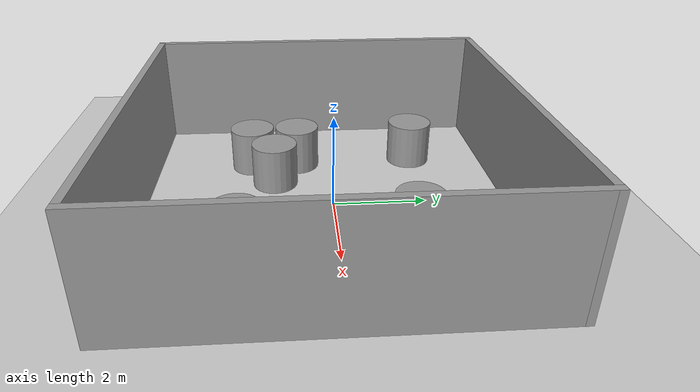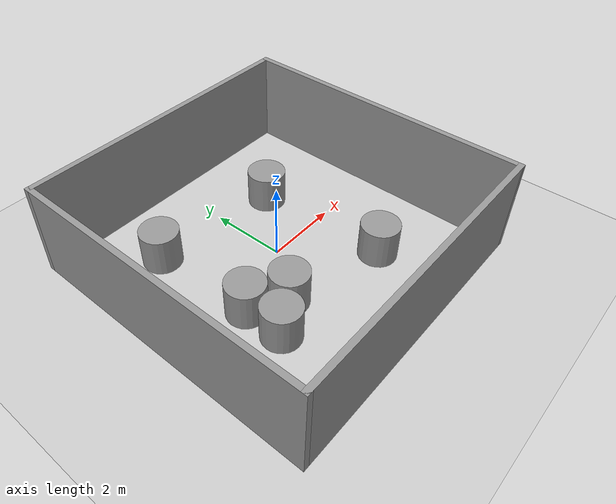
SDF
<sdf version="1.6">
 <world name="default">
  <light name="sun" type="directional">
   <pose>0 0 10 0 -0 0</pose>
   <diffuse>0.8 0.8 0.8 1</diffuse>
   <specular>0.2 0.2 0.2 1</specular>
   <attenuation>
    <range>1000</range>
    <constant>0.9</constant>
    <linear>0.01</linear>
    <quadratic>0.001</quadratic>
   </attenuation>
   <direction>-0.5 0.1 -0.9</direction>
  </light>
  <model name="ground_plane">
   <static>1</static>
   <link name="link">
    <collision name="collision">
     <geometry><plane><normal>0 0 1</normal><size>100 100</size></plane></geometry>
     <surface>
      <contact><collide_bitmask>65535</collide_bitmask></contact>
      <friction><ode><mu>100</mu><mu2>50</mu2></ode></friction>
     </surface>
    </collision>
    <visual name="visual">
     <cast_shadows>0</cast_shadows>
     <geometry><plane><normal>0 0 1</normal><size>100 100</size></plane></geometry>
     <material>
      <script><uri>file://media/materials/scripts/gazebo.material</uri><name>Gazebo/Grey</name></script>
     </material>
    </visual>
   </link>
  </model>
  <gravity>0 0 -9.8</gravity>
  <magnetic_field>6e-06 2.3e-05 -4.2e-05</magnetic_field>
  <atmosphere type="adiabatic"/>
  <physics name="default_physics" default="0" type="ode">
   <max_step_size>0.001</max_step_size>
   <real_time_factor>1</real_time_factor>
   <real_time_update_rate>1000</real_time_update_rate>
  </physics>
  <scene><ambient>0.4 0.4 0.4 1</ambient><background>0.7 0.7 0.7 1</background><shadows>1</shadows></scene>
  <spherical_coordinates>
   <surface_model>EARTH_WGS84</surface_model>
   <latitude_deg>0</latitude_deg>
   <longitude_deg>0</longitude_deg>
   <elevation>0</elevation>
   <heading_deg>0</heading_deg>
  </spherical_coordinates>
  <model name="64wall">
   <pose>-0.013722 -0.133586 0 0 -0 0</pose>
   <link name="Wall_0">
    <collision name="Wall_0_Collision">
     <geometry><box><size>8 0.15 2.5</size></box></geometry>
     <pose>0 0 1.25 0 -0 0</pose>
    </collision>
    <visual name="Wall_0_Visual">
     <pose>0 0 1.25 0 -0 0</pose>
     <geometry><box><size>8 0.15 2.5</size></box></geometry>
     <material>
      <script><uri>file://media/materials/scripts/gazebo.material</uri><name>Gazebo/Grey</name></script>
      <ambient>1 1 1 1</ambient>
     </material>
     <meta><layer>0</layer></meta>
    </visual>
    <pose>-0 -3.925 0 0 -0 0</pose>
   </link>
   <link name="Wall_2">
    <collision name="Wall_2_Collision">
     <geometry><box><size>8 0.15 2.5</size></box></geometry>
     <pose>0 0 1.25 0 -0 0</pose>
    </collision>
    <visual name="Wall_2_Visual">
     <pose>0 0 1.25 0 -0 0</pose>
     <geometry><box><size>8 0.15 2.5</size></box></geometry>
     <material>
      <script><uri>file://media/materials/scripts/gazebo.material</uri><name>Gazebo/Grey</name></script>
      <ambient>1 1 1 1</ambient>
     </material>
     <meta><layer>0</layer></meta>
    </visual>
    <pose>3.925 -0 0 0 -0 1.5708</pose>
   </link>
   <link name="Wall_3">
    <collision name="Wall_3_Collision">
     <geometry><box><size>8 0.15 2.5</size></box></geometry>
     <pose>0 0 1.25 0 -0 0</pose>
    </collision>
    <visual name="Wall_3_Visual">
     <pose>0 0 1.25 0 -0 0</pose>
     <geometry><box><size>8 0.15 2.5</size></box></geometry>
     <material>
      <script><uri>file://media/materials/scripts/gazebo.material</uri><name>Gazebo/Grey</name></script>
      <ambient>1 1 1 1</ambient>
     </material>
     <meta><layer>0</layer></meta>
    </visual>
    <pose>-0 3.925 0 0 -0 3.14159</pose>
   </link>
   <link name="Wall_4">
    <collision name="Wall_4_Collision">
     <geometry><box><size>8 0.15 2.5</size></box></geometry>
     <pose>0 0 1.25 0 -0 0</pose>
    </collision>
    <visual name="Wall_4_Visual">
     <pose>0 0 1.25 0 -0 0</pose>
     <geometry><box><size>8 0.15 2.5</size></box></geometry>
     <material>
      <script><uri>file://media/materials/scripts/gazebo.material</uri><name>Gazebo/Grey</name></script>
      <ambient>1 1 1 1</ambient>
     </material>
     <meta><layer>0</layer></meta>
    </visual>
    <pose>-3.925 -0 0 0 -0 -1.5708</pose>
   </link>
   <static>1</static>
  </model>
  <model name="unit_cylinder">
   <pose>1.39158 1.56143 0.499998 3e-06 -4e-06 0</pose>
   <link name="link">
    <inertial>
     <mass>1</mass>
     <inertia><ixx>0.145833</ixx><ixy>0</ixy><ixz>0</ixz><iyy>0.145833</iyy><iyz>0</iyz><izz>0.125</izz></inertia>
    </inertial>
    <collision name="collision">
     <geometry><cylinder><radius>0.5</radius><length>1</length></cylinder></geometry>
    </collision>
    <visual name="visual">
     <geometry><cylinder><radius>0.5</radius><length>1</length></cylinder></geometry>
     <material>
      <script><name>Gazebo/Grey</name><uri>file://media/materials/scripts/gazebo.material</uri></script>
     </material>
    </visual>
   </link>
  </model>
  <model name="unit_cylinder_0">
   <pose>-1.89445 -1.77996 0.499992 -3e-06 -4e-06 -0</pose>
   <link name="link">
    <inertial>
     <mass>1</mass>
     <inertia><ixx>0.145833</ixx><ixy>0</ixy><ixz>0</ixz><iyy>0.145833</iyy><iyz>0</iyz><izz>0.125</izz></inertia>
    </inertial>
    <collision name="collision">
     <geometry><cylinder><radius>0.5</radius><length>1</length></cylinder></geometry>
    </collision>
    <visual name="visual">
     <geometry><cylinder><radius>0.5</radius><length>1</length></cylinder></geometry>
     <material>
      <script><name>Gazebo/Grey</name><uri>file://media/materials/scripts/gazebo.material</uri></script>
     </material>
    </visual>
   </link>
  </model>
  <model name="unit_cylinder_1">
   <pose>-1.90951 -0.737193 0.499993 -3e-06 -3e-06 0</pose>
   <link name="link">
    <inertial>
     <mass>1</mass>
     <inertia><ixx>0.145833</ixx><ixy>0</ixy><ixz>0</ixz><iyy>0.145833</iyy><iyz>0</iyz><izz>0.125</izz></inertia>
    </inertial>
    <collision name="collision">
     <geometry><cylinder><radius>0.5</radius><length>1</length></cylinder></geometry>
    </collision>
    <visual name="visual">
     <geometry><cylinder><radius>0.5</radius><length>1</length></cylinder></geometry>
     <material>
      <script><name>Gazebo/Grey</name><uri>file://media/materials/scripts/gazebo.material</uri></script>
     </material>
    </visual>
   </link>
  </model>
  <model name="unit_cylinder_2">
   <pose>-1.00657 -1.25419 0.499997 3e-06 4e-06 -0</pose>
   <link name="link">
    <inertial>
     <mass>1</mass>
     <inertia><ixx>0.145833</ixx><ixy>0</ixy><ixz>0</ixz><iyy>0.145833</iyy><iyz>0</iyz><izz>0.125</izz></inertia>
    </inertial>
    <collision name="collision">
     <geometry><cylinder><radius>0.5</radius><length>1</length></cylinder></geometry>
    </collision>
    <visual name="visual">
     <geometry><cylinder><radius>0.5</radius><length>1</length></cylinder></geometry>
     <material>
      <script><name>Gazebo/Grey</name><uri>file://media/materials/scripts/gazebo.material</uri></script>
     </material>
    </visual>
   </link>
  </model>
  <model name="unit_cylinder_3">
   <pose>1.62541 -1.93006 0.499993 -3e-06 -4e-06 -0</pose>
   <link name="link">
    <inertial>
     <mass>1</mass>
     <inertia><ixx>0.145833</ixx><ixy>0</ixy><ixz>0</ixz><iyy>0.145833</iyy><iyz>0</iyz><izz>0.125</izz></inertia>
    </inertial>
    <collision name="collision">
     <geometry><cylinder><radius>0.5</radius><length>1</length></cylinder></geometry>
    </collision>
    <visual name="visual">
     <geometry><cylinder><radius>0.5</radius><length>1</length></cylinder></geometry>
     <material>
      <script><name>Gazebo/Grey</name><uri>file://media/materials/scripts/gazebo.material</uri></script>
     </material>
    </visual>
   </link>
  </model>
  <model name="unit_cylinder_4">
   <pose>-2.02629 1.97931 0.499997 3e-06 4e-06 -0</pose>
   <link name="link">
    <inertial>
     <mass>1</mass>
     <inertia><ixx>0.145833</ixx><ixy>0</ixy><ixz>0</ixz><iyy>0.145833</iyy><iyz>0</iyz><izz>0.125</izz></inertia>
    </inertial>
    <collision name="collision">
     <geometry><cylinder><radius>0.5</radius><length>1</length></cylinder></geometry>
    </collision>
    <visual name="visual">
     <geometry><cylinder><radius>0.5</radius><length>1</length></cylinder></geometry>
     <material>
      <script><name>Gazebo/Grey</name><uri>file://media/materials/scripts/gazebo.material</uri></script>
     </material>
    </visual>
   </link>
  </model>
 </world>
</sdf>
